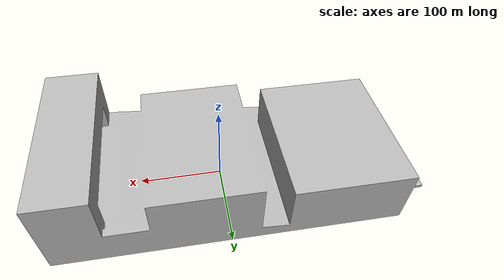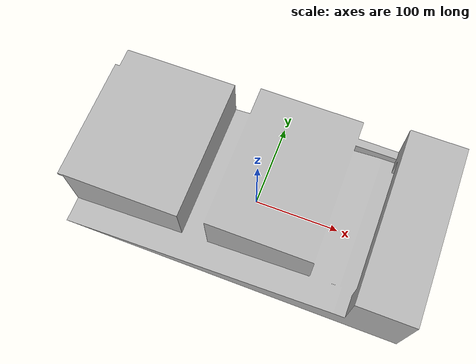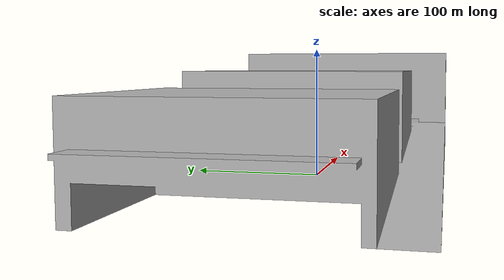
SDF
<sdf version='1.6'>
  <model name='factory'>
    <static>true</static>
    <link name='base_link'>
      <pose frame=''>0 0 0 0 -0 0</pose>
      <inertial>
        <pose frame=''>20.779 7.8948 40.595 0 -0 0</pose>
        <mass>4.5324e+09</mass>
        <inertia>
          <ixx>1.6663e+13</ixx>
          <ixy>2.479e+12</ixy>
          <ixz>-5.5148e+11</ixz>
          <iyy>6.2472e+13</iyy>
          <iyz>-3.3368e+11</iyz>
          <izz>7.3214e+13</izz>
        </inertia>
      </inertial>
      <collision name='base_link_collision'>
        <pose frame=''>0 0 0 0 -0 0</pose>
        <geometry>
          <mesh>
            <scale>1 1 1</scale>
            <uri>model://factory/meshes/base_link.STL</uri>
          </mesh>
        </geometry>
      </collision>
      <visual name='base_link_visual'>
        <pose frame=''>0 0 0 0 -0 0</pose>
        <geometry>
          <mesh>
            <scale>1 1 1</scale>
            <uri>model://factory/meshes/base_link.STL</uri>
          </mesh>
        </geometry>
      </visual>
    </link>
  </model>
</sdf>
